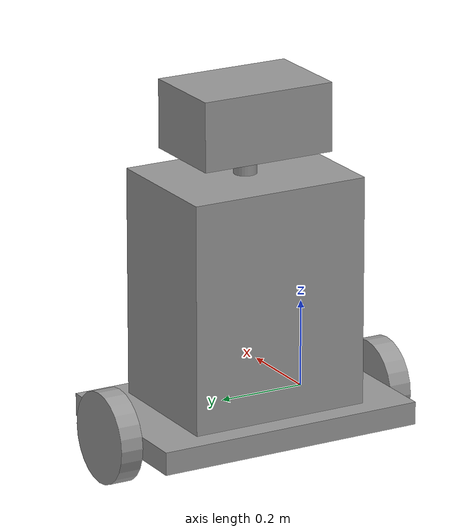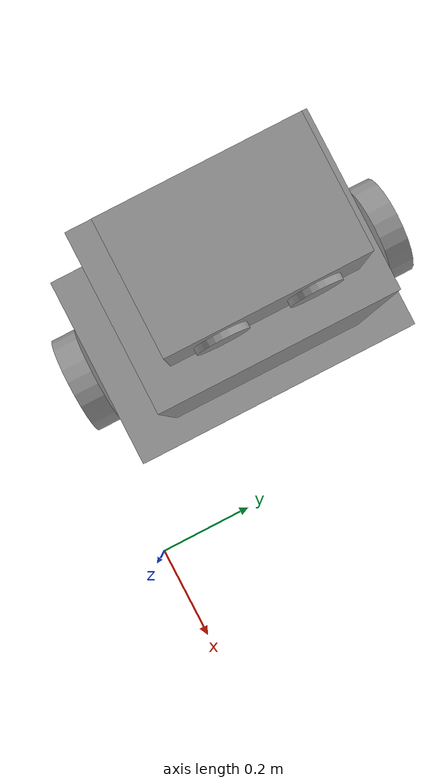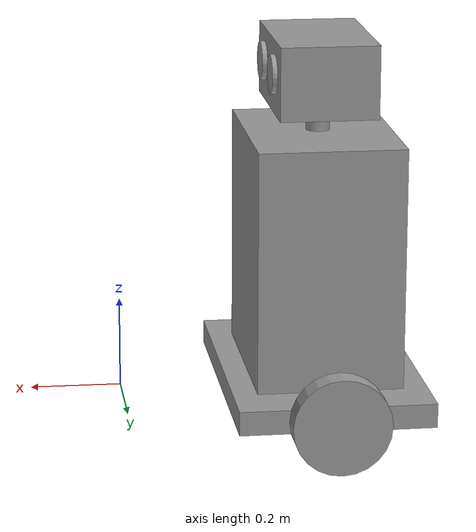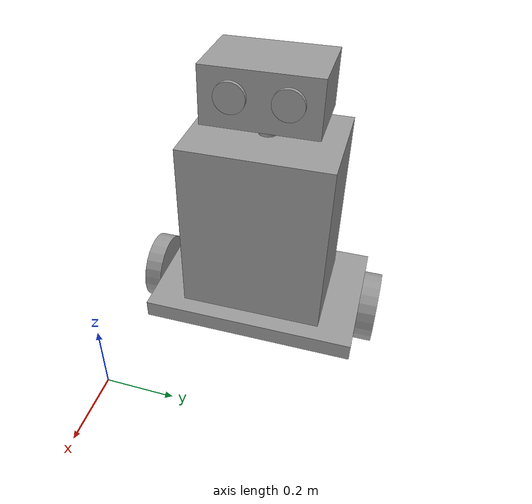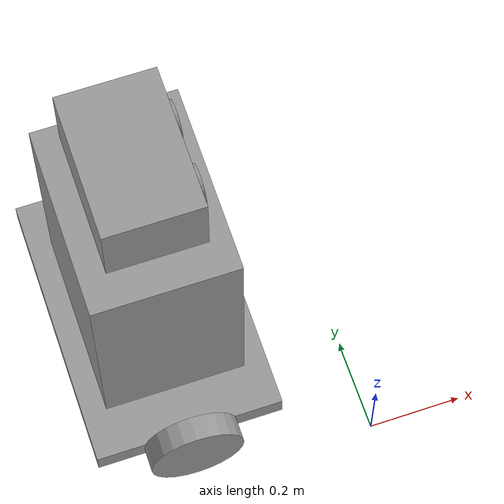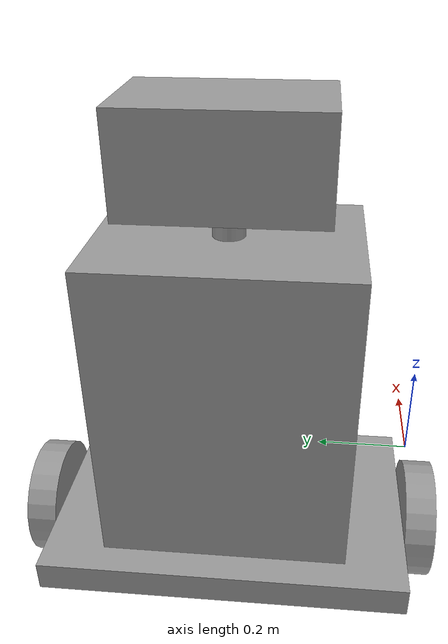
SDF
<?xml version='1.0'?>
<sdf version='1.7'>
  <model name='model'>
    <model name='arnold'>
      <link name='link_1'>
        <inertial>
          <mass>1</mass>
          <inertia>
            <ixx>0.166667</ixx>
            <ixy>0</ixy>
            <ixz>0</ixz>
            <iyy>0.166667</iyy>
            <iyz>0</iyz>
            <izz>0.166667</izz>
          </inertia>
          <pose>0 0 0 0 -0 0</pose>
        </inertial>
        <pose>0.00625 -0.046428 -0.334373 0 -0 0</pose>
        <gravity>0</gravity>
        <self_collide>0</self_collide>
        <kinematic>0</kinematic>
        <enable_wind>0</enable_wind>
        <visual name='visual'>
          <pose>0 0 0 0 -0 0</pose>
          <geometry>
            <box>
              <size>0.4 0.6 0.05</size>
            </box>
          </geometry>
          <material>
            <lighting>1</lighting>
            <script>
              <uri>file://media/materials/scripts/gazebo.material</uri>
              <name>Gazebo/Grey</name>
            </script>
            <shader type='pixel'>
              <normal_map>__default__</normal_map>
            </shader>
            <ambient>0.3 0.3 0.3 1</ambient>
            <diffuse>0.7 0.7 0.7 1</diffuse>
            <specular>0.01 0.01 0.01 1</specular>
            <emissive>0 0 0 1</emissive>
          </material>
          <transparency>0</transparency>
          <cast_shadows>1</cast_shadows>
        </visual>
        <collision name='collision'>
          <laser_retro>0</laser_retro>
          <max_contacts>10</max_contacts>
          <pose>0 0 0 0 -0 0</pose>
          <geometry>
            <box>
              <size>0.4 0.6 0.05</size>
            </box>
          </geometry>
          <surface>
            <friction>
              <ode>
                <mu>1</mu>
                <mu2>1</mu2>
                <fdir1>0 0 0</fdir1>
                <slip1>0</slip1>
                <slip2>0</slip2>
              </ode>
              <torsional>
                <coefficient>1</coefficient>
                <patch_radius>0</patch_radius>
                <surface_radius>0</surface_radius>
                <use_patch_radius>1</use_patch_radius>
                <ode>
                  <slip>0</slip>
                </ode>
              </torsional>
            </friction>
            <bounce>
              <restitution_coefficient>0</restitution_coefficient>
              <threshold>1e+06</threshold>
            </bounce>
            <contact>
              <collide_without_contact>0</collide_without_contact>
              <collide_without_contact_bitmask>1</collide_without_contact_bitmask>
              <collide_bitmask>1</collide_bitmask>
              <ode>
                <soft_cfm>0</soft_cfm>
                <soft_erp>0.2</soft_erp>
                <kp>1e+13</kp>
                <kd>1</kd>
                <max_vel>0.01</max_vel>
                <min_depth>0</min_depth>
              </ode>
              <bullet>
                <split_impulse>1</split_impulse>
                <split_impulse_penetration_threshold>-0.01</split_impulse_penetration_threshold>
                <soft_cfm>0</soft_cfm>
                <soft_erp>0.2</soft_erp>
                <kp>1e+13</kp>
                <kd>1</kd>
              </bullet>
            </contact>
          </surface>
        </collision>
      </link>
      <link name='link_2'>
        <inertial>
          <mass>1</mass>
          <inertia>
            <ixx>0.166667</ixx>
            <ixy>0</ixy>
            <ixz>0</ixz>
            <iyy>0.166667</iyy>
            <iyz>0</iyz>
            <izz>0.166667</izz>
          </inertia>
          <pose>0 0 0 0 -0 0</pose>
        </inertial>
        <pose>0.006258 -0.046428 -0.059373 0 -0 0</pose>
        <gravity>0</gravity>
        <self_collide>0</self_collide>
        <kinematic>0</kinematic>
        <enable_wind>0</enable_wind>
        <visual name='visual'>
          <pose>0 0 0 0 -0 0</pose>
          <geometry>
            <box>
              <size>0.3 0.4 0.5</size>
            </box>
          </geometry>
          <material>
            <lighting>1</lighting>
            <script>
              <uri>file://media/materials/scripts/gazebo.material</uri>
              <name>Gazebo/Grey</name>
            </script>
            <shader type='pixel'>
              <normal_map>__default__</normal_map>
            </shader>
            <ambient>0.3 0.3 0.3 1</ambient>
            <diffuse>0.7 0.7 0.7 1</diffuse>
            <specular>0.01 0.01 0.01 1</specular>
            <emissive>0 0 0 1</emissive>
          </material>
          <transparency>0</transparency>
          <cast_shadows>1</cast_shadows>
        </visual>
        <collision name='collision'>
          <laser_retro>0</laser_retro>
          <max_contacts>10</max_contacts>
          <pose>0 0 0 0 -0 0</pose>
          <geometry>
            <box>
              <size>0.3 0.4 0.5</size>
            </box>
          </geometry>
          <surface>
            <friction>
              <ode>
                <mu>1</mu>
                <mu2>1</mu2>
                <fdir1>0 0 0</fdir1>
                <slip1>0</slip1>
                <slip2>0</slip2>
              </ode>
              <torsional>
                <coefficient>1</coefficient>
                <patch_radius>0</patch_radius>
                <surface_radius>0</surface_radius>
                <use_patch_radius>1</use_patch_radius>
                <ode>
                  <slip>0</slip>
                </ode>
              </torsional>
            </friction>
            <bounce>
              <restitution_coefficient>0</restitution_coefficient>
              <threshold>1e+06</threshold>
            </bounce>
            <contact>
              <collide_without_contact>0</collide_without_contact>
              <collide_without_contact_bitmask>1</collide_without_contact_bitmask>
              <collide_bitmask>1</collide_bitmask>
              <ode>
                <soft_cfm>0</soft_cfm>
                <soft_erp>0.2</soft_erp>
                <kp>1e+13</kp>
                <kd>1</kd>
                <max_vel>0.01</max_vel>
                <min_depth>0</min_depth>
              </ode>
              <bullet>
                <split_impulse>1</split_impulse>
                <split_impulse_penetration_threshold>-0.01</split_impulse_penetration_threshold>
                <soft_cfm>0</soft_cfm>
                <soft_erp>0.2</soft_erp>
                <kp>1e+13</kp>
                <kd>1</kd>
              </bullet>
            </contact>
          </surface>
        </collision>
      </link>
      <link name='link_2_clone'>
        <inertial>
          <mass>1</mass>
          <inertia>
            <ixx>0.166667</ixx>
            <ixy>0</ixy>
            <ixz>0</ixz>
            <iyy>0.166667</iyy>
            <iyz>0</iyz>
            <izz>0.166667</izz>
          </inertia>
          <pose>0 0 0 0 -0 0</pose>
        </inertial>
        <pose>0.006272 -0.046428 0.315638 0 -0 0</pose>
        <gravity>1</gravity>
        <self_collide>0</self_collide>
        <kinematic>0</kinematic>
        <enable_wind>0</enable_wind>
        <visual name='visual'>
          <pose>0 0 0 0 -0 0</pose>
          <geometry>
            <box>
              <size>0.2 0.3 0.15</size>
            </box>
          </geometry>
          <material>
            <lighting>1</lighting>
            <script>
              <uri>file://media/materials/scripts/gazebo.material</uri>
              <name>Gazebo/Grey</name>
            </script>
            <shader type='pixel'>
              <normal_map>__default__</normal_map>
            </shader>
            <ambient>0.3 0.3 0.3 1</ambient>
            <diffuse>0.7 0.7 0.7 1</diffuse>
            <specular>0.01 0.01 0.01 1</specular>
            <emissive>0 0 0 1</emissive>
          </material>
          <transparency>0</transparency>
          <cast_shadows>1</cast_shadows>
        </visual>
        <collision name='collision'>
          <laser_retro>0</laser_retro>
          <max_contacts>10</max_contacts>
          <pose>0 0 0 0 -0 0</pose>
          <geometry>
            <box>
              <size>0.2 0.3 0.15</size>
            </box>
          </geometry>
          <surface>
            <friction>
              <ode>
                <mu>1</mu>
                <mu2>1</mu2>
                <fdir1>0 0 0</fdir1>
                <slip1>0</slip1>
                <slip2>0</slip2>
              </ode>
              <torsional>
                <coefficient>1</coefficient>
                <patch_radius>0</patch_radius>
                <surface_radius>0</surface_radius>
                <use_patch_radius>1</use_patch_radius>
                <ode>
                  <slip>0</slip>
                </ode>
              </torsional>
            </friction>
            <bounce>
              <restitution_coefficient>0</restitution_coefficient>
              <threshold>1e+06</threshold>
            </bounce>
            <contact>
              <collide_without_contact>0</collide_without_contact>
              <collide_without_contact_bitmask>1</collide_without_contact_bitmask>
              <collide_bitmask>1</collide_bitmask>
              <ode>
                <soft_cfm>0</soft_cfm>
                <soft_erp>0.2</soft_erp>
                <kp>1e+13</kp>
                <kd>1</kd>
                <max_vel>0.01</max_vel>
                <min_depth>0</min_depth>
              </ode>
              <bullet>
                <split_impulse>1</split_impulse>
                <split_impulse_penetration_threshold>-0.01</split_impulse_penetration_threshold>
                <soft_cfm>0</soft_cfm>
                <soft_erp>0.2</soft_erp>
                <kp>1e+13</kp>
                <kd>1</kd>
              </bullet>
            </contact>
          </surface>
        </collision>
      </link>
      <link name='link_3'>
        <inertial>
          <mass>1</mass>
          <inertia>
            <ixx>0.145833</ixx>
            <ixy>0</ixy>
            <ixz>0</ixz>
            <iyy>0.145833</iyy>
            <iyz>0</iyz>
            <izz>0.125</izz>
          </inertia>
          <pose>0 0 0 0 -0 0</pose>
        </inertial>
        <pose>0.006268 -0.046428 0.215633 0 -0 0</pose>
        <gravity>1</gravity>
        <self_collide>0</self_collide>
        <kinematic>0</kinematic>
        <enable_wind>0</enable_wind>
        <visual name='visual'>
          <pose>0 0 0 0 -0 0</pose>
          <geometry>
            <cylinder>
              <radius>0.025</radius>
              <length>0.05</length>
            </cylinder>
          </geometry>
          <material>
            <lighting>1</lighting>
            <script>
              <uri>file://media/materials/scripts/gazebo.material</uri>
              <name>Gazebo/Grey</name>
            </script>
            <shader type='pixel'>
              <normal_map>__default__</normal_map>
            </shader>
            <ambient>0.3 0.3 0.3 1</ambient>
            <diffuse>0.7 0.7 0.7 1</diffuse>
            <specular>0.01 0.01 0.01 1</specular>
            <emissive>0 0 0 1</emissive>
          </material>
          <transparency>0</transparency>
          <cast_shadows>1</cast_shadows>
        </visual>
        <collision name='collision'>
          <laser_retro>0</laser_retro>
          <max_contacts>10</max_contacts>
          <pose>0 0 0 0 -0 0</pose>
          <geometry>
            <cylinder>
              <radius>0.025</radius>
              <length>0.05</length>
            </cylinder>
          </geometry>
          <surface>
            <friction>
              <ode>
                <mu>1</mu>
                <mu2>1</mu2>
                <fdir1>0 0 0</fdir1>
                <slip1>0</slip1>
                <slip2>0</slip2>
              </ode>
              <torsional>
                <coefficient>1</coefficient>
                <patch_radius>0</patch_radius>
                <surface_radius>0</surface_radius>
                <use_patch_radius>1</use_patch_radius>
                <ode>
                  <slip>0</slip>
                </ode>
              </torsional>
            </friction>
            <bounce>
              <restitution_coefficient>0</restitution_coefficient>
              <threshold>1e+06</threshold>
            </bounce>
            <contact>
              <collide_without_contact>0</collide_without_contact>
              <collide_without_contact_bitmask>1</collide_without_contact_bitmask>
              <collide_bitmask>1</collide_bitmask>
              <ode>
                <soft_cfm>0</soft_cfm>
                <soft_erp>0.2</soft_erp>
                <kp>1e+13</kp>
                <kd>1</kd>
                <max_vel>0.01</max_vel>
                <min_depth>0</min_depth>
              </ode>
              <bullet>
                <split_impulse>1</split_impulse>
                <split_impulse_penetration_threshold>-0.01</split_impulse_penetration_threshold>
                <soft_cfm>0</soft_cfm>
                <soft_erp>0.2</soft_erp>
                <kp>1e+13</kp>
                <kd>1</kd>
              </bullet>
            </contact>
          </surface>
        </collision>
      </link>
      <link name='link_3_clone'>
        <inertial>
          <mass>1</mass>
          <inertia>
            <ixx>0.145833</ixx>
            <ixy>0</ixy>
            <ixz>0</ixz>
            <iyy>0.145833</iyy>
            <iyz>0</iyz>
            <izz>0.125</izz>
          </inertia>
          <pose>0 0 0 0 -0 0</pose>
        </inertial>
        <pose>0.11131 -0.116428 0.321877 0 -0 0</pose>
        <gravity>1</gravity>
        <self_collide>0</self_collide>
        <kinematic>0</kinematic>
        <enable_wind>0</enable_wind>
        <visual name='visual'>
          <pose>0 0 0 0 1.5707 0</pose>
          <geometry>
            <cylinder>
              <radius>0.04</radius>
              <length>0.01</length>
            </cylinder>
          </geometry>
          <material>
            <lighting>1</lighting>
            <script>
              <uri>file://media/materials/scripts/gazebo.material</uri>
              <name>Gazebo/Grey</name>
            </script>
            <shader type='pixel'>
              <normal_map>__default__</normal_map>
            </shader>
            <ambient>0.3 0.3 0.3 1</ambient>
            <diffuse>0.7 0.7 0.7 1</diffuse>
            <specular>0.01 0.01 0.01 1</specular>
            <emissive>0 0 0 1</emissive>
          </material>
          <transparency>0</transparency>
          <cast_shadows>1</cast_shadows>
        </visual>
        <collision name='collision'>
          <laser_retro>0</laser_retro>
          <max_contacts>10</max_contacts>
          <pose>0 0 0 0 1.5707 0</pose>
          <geometry>
            <cylinder>
              <radius>0.04</radius>
              <length>0.01</length>
            </cylinder>
          </geometry>
          <surface>
            <friction>
              <ode>
                <mu>1</mu>
                <mu2>1</mu2>
                <fdir1>0 0 0</fdir1>
                <slip1>0</slip1>
                <slip2>0</slip2>
              </ode>
              <torsional>
                <coefficient>1</coefficient>
                <patch_radius>0</patch_radius>
                <surface_radius>0</surface_radius>
                <use_patch_radius>1</use_patch_radius>
                <ode>
                  <slip>0</slip>
                </ode>
              </torsional>
            </friction>
            <bounce>
              <restitution_coefficient>0</restitution_coefficient>
              <threshold>1e+06</threshold>
            </bounce>
            <contact>
              <collide_without_contact>0</collide_without_contact>
              <collide_without_contact_bitmask>1</collide_without_contact_bitmask>
              <collide_bitmask>1</collide_bitmask>
              <ode>
                <soft_cfm>0</soft_cfm>
                <soft_erp>0.2</soft_erp>
                <kp>1e+13</kp>
                <kd>1</kd>
                <max_vel>0.01</max_vel>
                <min_depth>0</min_depth>
              </ode>
              <bullet>
                <split_impulse>1</split_impulse>
                <split_impulse_penetration_threshold>-0.01</split_impulse_penetration_threshold>
                <soft_cfm>0</soft_cfm>
                <soft_erp>0.2</soft_erp>
                <kp>1e+13</kp>
                <kd>1</kd>
              </bullet>
            </contact>
          </surface>
        </collision>
      </link>
      <link name='link_3_clone_clone'>
        <inertial>
          <mass>1</mass>
          <inertia>
            <ixx>0.145833</ixx>
            <ixy>0</ixy>
            <ixz>0</ixz>
            <iyy>0.145833</iyy>
            <iyz>0</iyz>
            <izz>0.125</izz>
          </inertia>
          <pose>0 0 0 0 -0 0</pose>
        </inertial>
        <pose>0.111294 0.023572 0.321877 0 -0 0</pose>
        <gravity>1</gravity>
        <self_collide>0</self_collide>
        <kinematic>0</kinematic>
        <enable_wind>0</enable_wind>
        <visual name='visual'>
          <pose>0 0 0 0 1.5707 0</pose>
          <geometry>
            <cylinder>
              <radius>0.04</radius>
              <length>0.01</length>
            </cylinder>
          </geometry>
          <material>
            <lighting>1</lighting>
            <script>
              <uri>file://media/materials/scripts/gazebo.material</uri>
              <name>Gazebo/Grey</name>
            </script>
            <shader type='pixel'>
              <normal_map>__default__</normal_map>
            </shader>
            <ambient>0.3 0.3 0.3 1</ambient>
            <diffuse>0.7 0.7 0.7 1</diffuse>
            <specular>0.01 0.01 0.01 1</specular>
            <emissive>0 0 0 1</emissive>
          </material>
          <transparency>0</transparency>
          <cast_shadows>1</cast_shadows>
        </visual>
        <collision name='collision'>
          <laser_retro>0</laser_retro>
          <max_contacts>10</max_contacts>
          <pose>0 0 0 0 1.5707 0</pose>
          <geometry>
            <cylinder>
              <radius>0.04</radius>
              <length>0.01</length>
            </cylinder>
          </geometry>
          <surface>
            <friction>
              <ode>
                <mu>1</mu>
                <mu2>1</mu2>
                <fdir1>0 0 0</fdir1>
                <slip1>0</slip1>
                <slip2>0</slip2>
              </ode>
              <torsional>
                <coefficient>1</coefficient>
                <patch_radius>0</patch_radius>
                <surface_radius>0</surface_radius>
                <use_patch_radius>1</use_patch_radius>
                <ode>
                  <slip>0</slip>
                </ode>
              </torsional>
            </friction>
            <bounce>
              <restitution_coefficient>0</restitution_coefficient>
              <threshold>1e+06</threshold>
            </bounce>
            <contact>
              <collide_without_contact>0</collide_without_contact>
              <collide_without_contact_bitmask>1</collide_without_contact_bitmask>
              <collide_bitmask>1</collide_bitmask>
              <ode>
                <soft_cfm>0</soft_cfm>
                <soft_erp>0.2</soft_erp>
                <kp>1e+13</kp>
                <kd>1</kd>
                <max_vel>0.01</max_vel>
                <min_depth>0</min_depth>
              </ode>
              <bullet>
                <split_impulse>1</split_impulse>
                <split_impulse_penetration_threshold>-0.01</split_impulse_penetration_threshold>
                <soft_cfm>0</soft_cfm>
                <soft_erp>0.2</soft_erp>
                <kp>1e+13</kp>
                <kd>1</kd>
              </bullet>
            </contact>
          </surface>
        </collision>
      </link>
      <link name='link_4'>
        <inertial>
          <mass>1</mass>
          <inertia>
            <ixx>0.145833</ixx>
            <ixy>0</ixy>
            <ixz>0</ixz>
            <iyy>0.145833</iyy>
            <iyz>0</iyz>
            <izz>0.125</izz>
          </inertia>
          <pose>0 0 0 0 -0 0</pose>
        </inertial>
        <pose>0.00625 -0.371428 -0.334373 1.5707 -0 0</pose>
        <gravity>1</gravity>
        <self_collide>0</self_collide>
        <kinematic>0</kinematic>
        <enable_wind>0</enable_wind>
        <visual name='visual'>
          <pose>0 0 0 0 -0 0</pose>
          <geometry>
            <cylinder>
              <radius>0.1</radius>
              <length>0.05</length>
            </cylinder>
          </geometry>
          <material>
            <lighting>1</lighting>
            <script>
              <uri>file://media/materials/scripts/gazebo.material</uri>
              <name>Gazebo/Grey</name>
            </script>
            <shader type='pixel'>
              <normal_map>__default__</normal_map>
            </shader>
            <ambient>0.3 0.3 0.3 1</ambient>
            <diffuse>0.7 0.7 0.7 1</diffuse>
            <specular>0.01 0.01 0.01 1</specular>
            <emissive>0 0 0 1</emissive>
          </material>
          <transparency>0</transparency>
          <cast_shadows>1</cast_shadows>
        </visual>
        <collision name='collision'>
          <laser_retro>0</laser_retro>
          <max_contacts>10</max_contacts>
          <pose>0 0 0 0 -0 0</pose>
          <geometry>
            <cylinder>
              <radius>0.1</radius>
              <length>0.05</length>
            </cylinder>
          </geometry>
          <surface>
            <friction>
              <ode>
                <mu>1</mu>
                <mu2>1</mu2>
                <fdir1>0 0 0</fdir1>
                <slip1>0</slip1>
                <slip2>0</slip2>
              </ode>
              <torsional>
                <coefficient>1</coefficient>
                <patch_radius>0</patch_radius>
                <surface_radius>0</surface_radius>
                <use_patch_radius>1</use_patch_radius>
                <ode>
                  <slip>0</slip>
                </ode>
              </torsional>
            </friction>
            <bounce>
              <restitution_coefficient>0</restitution_coefficient>
              <threshold>1e+06</threshold>
            </bounce>
            <contact>
              <collide_without_contact>0</collide_without_contact>
              <collide_without_contact_bitmask>1</collide_without_contact_bitmask>
              <collide_bitmask>1</collide_bitmask>
              <ode>
                <soft_cfm>0</soft_cfm>
                <soft_erp>0.2</soft_erp>
                <kp>1e+13</kp>
                <kd>1</kd>
                <max_vel>0.01</max_vel>
                <min_depth>0</min_depth>
              </ode>
              <bullet>
                <split_impulse>1</split_impulse>
                <split_impulse_penetration_threshold>-0.01</split_impulse_penetration_threshold>
                <soft_cfm>0</soft_cfm>
                <soft_erp>0.2</soft_erp>
                <kp>1e+13</kp>
                <kd>1</kd>
              </bullet>
            </contact>
          </surface>
        </collision>
      </link>
      <link name='link_4_clone'>
        <inertial>
          <mass>1</mass>
          <inertia>
            <ixx>0.145833</ixx>
            <ixy>0</ixy>
            <ixz>0</ixz>
            <iyy>0.145833</iyy>
            <iyz>0</iyz>
            <izz>0.125</izz>
          </inertia>
          <pose>0 0 0 0 -0 0</pose>
        </inertial>
        <pose>0.00625 0.278572 -0.334373 1.5707 -0 0</pose>
        <gravity>1</gravity>
        <self_collide>0</self_collide>
        <kinematic>0</kinematic>
        <enable_wind>0</enable_wind>
        <visual name='visual'>
          <pose>0 0 0 0 -0 0</pose>
          <geometry>
            <cylinder>
              <radius>0.1</radius>
              <length>0.05</length>
            </cylinder>
          </geometry>
          <material>
            <lighting>1</lighting>
            <script>
              <uri>file://media/materials/scripts/gazebo.material</uri>
              <name>Gazebo/Grey</name>
            </script>
            <shader type='pixel'>
              <normal_map>__default__</normal_map>
            </shader>
            <ambient>0.3 0.3 0.3 1</ambient>
            <diffuse>0.7 0.7 0.7 1</diffuse>
            <specular>0.01 0.01 0.01 1</specular>
            <emissive>0 0 0 1</emissive>
          </material>
          <transparency>0</transparency>
          <cast_shadows>1</cast_shadows>
        </visual>
        <collision name='collision'>
          <laser_retro>0</laser_retro>
          <max_contacts>10</max_contacts>
          <pose>0 0 0 0 -0 0</pose>
          <geometry>
            <cylinder>
              <radius>0.1</radius>
              <length>0.05</length>
            </cylinder>
          </geometry>
          <surface>
            <friction>
              <ode>
                <mu>1</mu>
                <mu2>1</mu2>
                <fdir1>0 0 0</fdir1>
                <slip1>0</slip1>
                <slip2>0</slip2>
              </ode>
              <torsional>
                <coefficient>1</coefficient>
                <patch_radius>0</patch_radius>
                <surface_radius>0</surface_radius>
                <use_patch_radius>1</use_patch_radius>
                <ode>
                  <slip>0</slip>
                </ode>
              </torsional>
            </friction>
            <bounce>
              <restitution_coefficient>0</restitution_coefficient>
              <threshold>1e+06</threshold>
            </bounce>
            <contact>
              <collide_without_contact>0</collide_without_contact>
              <collide_without_contact_bitmask>1</collide_without_contact_bitmask>
              <collide_bitmask>1</collide_bitmask>
              <ode>
                <soft_cfm>0</soft_cfm>
                <soft_erp>0.2</soft_erp>
                <kp>1e+13</kp>
                <kd>1</kd>
                <max_vel>0.01</max_vel>
                <min_depth>0</min_depth>
              </ode>
              <bullet>
                <split_impulse>1</split_impulse>
                <split_impulse_penetration_threshold>-0.01</split_impulse_penetration_threshold>
                <soft_cfm>0</soft_cfm>
                <soft_erp>0.2</soft_erp>
                <kp>1e+13</kp>
                <kd>1</kd>
              </bullet>
            </contact>
          </surface>
        </collision>
      </link>
      <joint name='link_1_JOINT_0' type='fixed'>
        <parent>link_1</parent>
        <child>link_2</child>
        <pose>0 0 0 0 -0 0</pose>
        <physics>
          <ode>
            <limit>
              <cfm>0</cfm>
              <erp>0.2</erp>
            </limit>
            <suspension>
              <cfm>0</cfm>
              <erp>0.2</erp>
            </suspension>
          </ode>
        </physics>
      </joint>
      <joint name='link_1_JOINT_2' type='revolute'>
        <parent>link_1</parent>
        <child>link_4</child>
        <pose>0 0 0 0 -0 0</pose>
        <axis>
          <xyz>0 0 1</xyz>
          <limit>
            <lower>-1.79769e+308</lower>
            <upper>1.79769e+308</upper>
            <effort>-1</effort>
            <velocity>-1</velocity>
          </limit>
          <dynamics>
            <spring_reference>0</spring_reference>
            <spring_stiffness>0</spring_stiffness>
            <damping>0</damping>
            <friction>0</friction>
          </dynamics>
        </axis>
        <physics>
          <ode>
            <limit>
              <cfm>0</cfm>
              <erp>0.2</erp>
            </limit>
            <suspension>
              <cfm>0</cfm>
              <erp>0.2</erp>
            </suspension>
          </ode>
        </physics>
      </joint>
      <joint name='link_1_JOINT_3' type='revolute'>
        <parent>link_1</parent>
        <child>link_4_clone</child>
        <pose>0 0 0 0 -0 0</pose>
        <axis>
          <xyz>0 0 1</xyz>
          <limit>
            <lower>-1.79769e+308</lower>
            <upper>1.79769e+308</upper>
            <effort>-1</effort>
            <velocity>-1</velocity>
          </limit>
          <dynamics>
            <spring_reference>0</spring_reference>
            <spring_stiffness>0</spring_stiffness>
            <damping>0</damping>
            <friction>0</friction>
          </dynamics>
        </axis>
        <physics>
          <ode>
            <limit>
              <cfm>0</cfm>
              <erp>0.2</erp>
            </limit>
            <suspension>
              <cfm>0</cfm>
              <erp>0.2</erp>
            </suspension>
          </ode>
        </physics>
      </joint>
      <joint name='link_2_JOINT_1' type='fixed'>
        <parent>link_2</parent>
        <child>link_3</child>
        <pose>0 0 0 0 -0 0</pose>
        <physics>
          <ode>
            <limit>
              <cfm>0</cfm>
              <erp>0.2</erp>
            </limit>
            <suspension>
              <cfm>0</cfm>
              <erp>0.2</erp>
            </suspension>
          </ode>
        </physics>
      </joint>
      <joint name='link_2_clone_JOINT_3' type='fixed'>
        <parent>link_2_clone</parent>
        <child>link_3_clone</child>
        <pose>0 0 0 0 -0 0</pose>
        <physics>
          <ode>
            <limit>
              <cfm>0</cfm>
              <erp>0.2</erp>
            </limit>
            <suspension>
              <cfm>0</cfm>
              <erp>0.2</erp>
            </suspension>
          </ode>
        </physics>
      </joint>
      <joint name='link_2_clone_JOINT_4' type='fixed'>
        <parent>link_2_clone</parent>
        <child>link_3_clone_clone</child>
        <pose>0 0 0 0 -0 0</pose>
        <physics>
          <ode>
            <limit>
              <cfm>0</cfm>
              <erp>0.2</erp>
            </limit>
            <suspension>
              <cfm>0</cfm>
              <erp>0.2</erp>
            </suspension>
          </ode>
        </physics>
      </joint>
      <joint name='link_3_JOINT_2' type='revolute'>
        <parent>link_3</parent>
        <child>link_2_clone</child>
        <pose>0 0 0 0 -0 0</pose>
        <axis>
          <xyz>0 0 1</xyz>
          <limit>
            <lower>-1.79769e+308</lower>
            <upper>1.79769e+308</upper>
            <effort>-1</effort>
            <velocity>-1</velocity>
          </limit>
          <dynamics>
            <spring_reference>0</spring_reference>
            <spring_stiffness>0</spring_stiffness>
            <damping>0</damping>
            <friction>0</friction>
          </dynamics>
        </axis>
        <physics>
          <ode>
            <limit>
              <cfm>0</cfm>
              <erp>0.2</erp>
            </limit>
            <suspension>
              <cfm>0</cfm>
              <erp>0.2</erp>
            </suspension>
          </ode>
        </physics>
      </joint>
      <static>0</static>
      <allow_auto_disable>1</allow_auto_disable>
      <pose>-0.388384 0.405657 0.470631 0 -0 0</pose>
    </model>
    <static>0</static>
    <allow_auto_disable>1</allow_auto_disable>
  </model>
</sdf>
